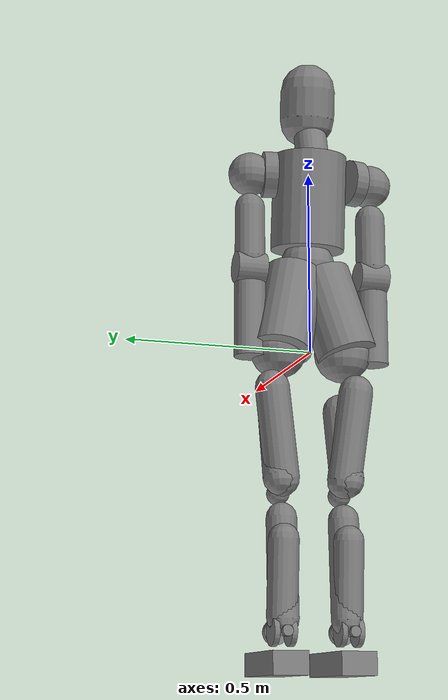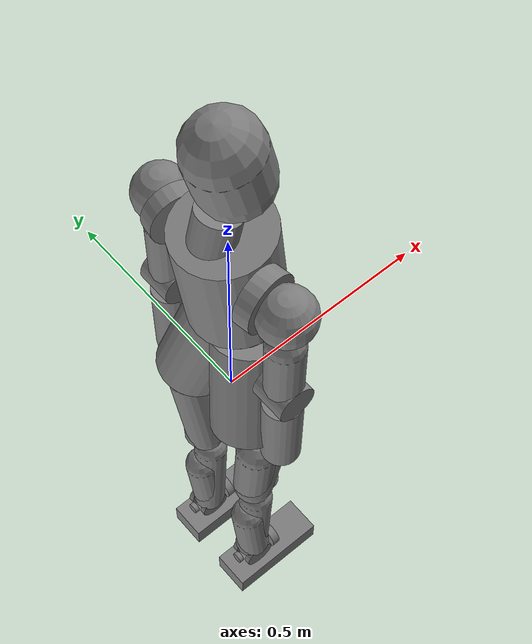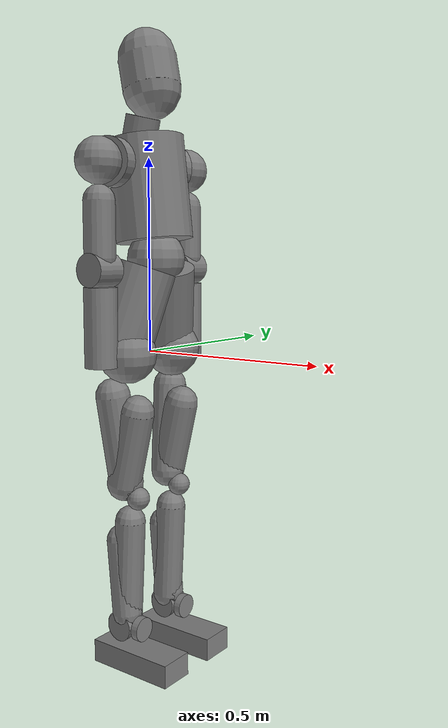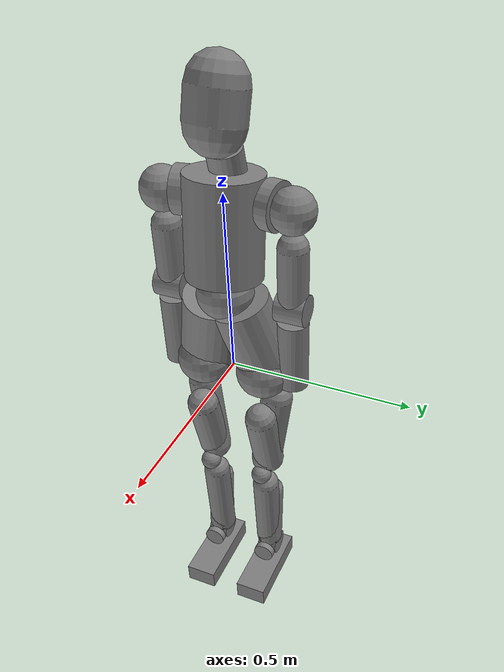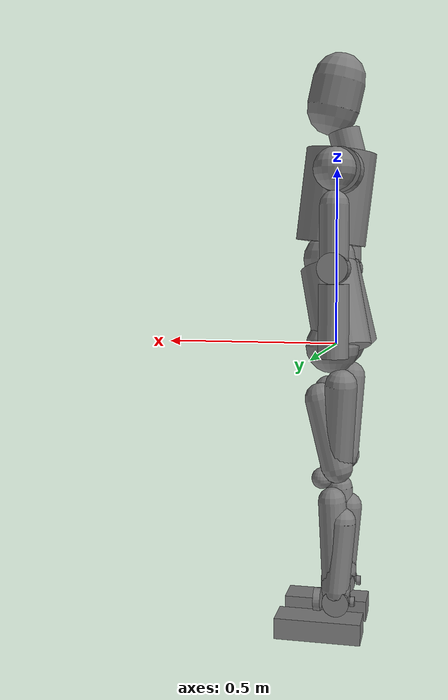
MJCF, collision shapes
<mujoco model="neo_beta">
    <default>
        <geom solref="0.01 0.9" solimp="0.8 0.9 0.01" friction="1.0 0.05 0.001" />
    </default>
    <option integrator="RK4" iterations="50" />
    <compiler angle="radian" />
    <asset>
        <mesh name="PelvisCover" file="./meshes/lod1/PelvisCover.obj" scale="1e-05 1e-05 1e-05" />
        <mesh name="RightHipCover" file="./meshes/lod1/RightHipCover.obj" scale="1e-05 1e-05 1e-05" />
        <mesh name="RightThighCover" file="./meshes/lod1/RightThighCover.obj"
            scale="1e-05 1e-05 1e-05" />
        <mesh name="RightKneecapCover" file="./meshes/lod1/RightKneecapCover.obj"
            scale="1e-05 1e-05 1e-05" />
        <mesh name="RightShinCover" file="./meshes/lod1/RightShinCover.obj"
            scale="1e-05 1e-05 1e-05" />
        <mesh name="RightAnkleCovers" file="./meshes/lod1/RightAnkleCovers.obj"
            scale="1e-05 1e-05 1e-05" />
        <mesh name="RightFootCover" file="./meshes/lod1/RightFootCover.obj"
            scale="1e-05 1e-05 1e-05" />
        <mesh name="LeftHipCover" file="./meshes/lod1/LeftHipCover.obj" scale="1e-05 1e-05 1e-05" />
        <mesh name="LeftThighCover" file="./meshes/lod1/LeftThighCover.obj"
            scale="1e-05 1e-05 1e-05" />
        <mesh name="LeftKneecapCover" file="./meshes/lod1/LeftKneecapCover.obj"
            scale="1e-05 1e-05 1e-05" />
        <mesh name="LeftShinCover" file="./meshes/lod1/LeftShinCover.obj" scale="1e-05 1e-05 1e-05" />
        <mesh name="LeftAnkleCovers" file="./meshes/lod1/LeftAnkleCovers.obj"
            scale="1e-05 1e-05 1e-05" />
        <mesh name="LeftFootCover" file="./meshes/lod1/LeftFootCover.obj" scale="1e-05 1e-05 1e-05" />
        <mesh name="TorsoCover" file="./meshes/lod1/TorsoCover.obj" scale="1e-05 1e-05 1e-05" />
        <mesh name="RightScapulaCover" file="./meshes/lod1/RightScapulaCover.obj"
            scale="1e-05 1e-05 1e-05" />
        <mesh name="RightShoulderCover" file="./meshes/lod1/RightShoulderCover.obj"
            scale="1e-05 1e-05 1e-05" />
        <mesh name="RightUpperArmCover" file="./meshes/lod1/RightUpperArmCover.obj"
            scale="1e-05 1e-05 1e-05" />
        <mesh name="RightElbowCover" file="./meshes/lod1/RightElbowCover.obj"
            scale="1e-05 1e-05 1e-05" />
        <mesh name="RightLowerArmCover" file="./meshes/lod1/RightLowerArmCover.obj"
            scale="1e-05 1e-05 1e-05" />
        <mesh name="LeftScapulaCover" file="./meshes/lod1/LeftScapulaCover.obj"
            scale="1e-05 1e-05 1e-05" />
        <mesh name="LeftShoulderCover" file="./meshes/lod1/LeftShoulderCover.obj"
            scale="1e-05 1e-05 1e-05" />
        <mesh name="LeftUpperArmCover" file="./meshes/lod1/LeftUpperArmCover.obj"
            scale="1e-05 1e-05 1e-05" />
        <mesh name="LeftElbowCover" file="./meshes/lod1/LeftElbowCover.obj"
            scale="1e-05 1e-05 1e-05" />
        <mesh name="LeftLowerArmCover" file="./meshes/lod1/LeftLowerArmCover.obj"
            scale="1e-05 1e-05 1e-05" />
        <mesh name="Neck_Z_Cover" file="./meshes/lod1/Neck_Z_Cover.obj" scale="1e-05 1e-05 1e-05" />
        <mesh name="HeadCover_Combined" file="./meshes/lod1/HeadCover_Combined.obj"
            scale="1e-05 1e-05 1e-05" />
    </asset>

    <worldbody>
        <body name="base">
            <freejoint name="base" />
            <body name="link_pelvis" pos="0 0 0">
                <inertial pos="0.0073145 0.00199007 0.120851"
                    quat="0.63988 0.76686 0.0324651 -0.0377523"
                    mass="6.87077" diaginertia="0.0736053 0.0456795 0.0437648" />
                <geom type="mesh" contype="0" conaffinity="0" group="1" density="0"
                    rgba="0.752941 0.752941 0.752941 1" mesh="PelvisCover" />
                <geom type="cylinder" size="0.08 0.12" pos="-0.00571 0.06421 0.10726" quat="0.98757832 0.11487811 0.10648317 -0.01238645"/>
                <geom type="cylinder" size="0.08 0.12" pos="-0.00571 -0.06421 0.10726" quat="0.98757832 -0.11487811 0.10648317 0.01238645"/>
                <geom type="sphere" size="0.075" pos="0.02196 0 0.24377"/>
                <body name="link_r_upper_hip" pos="0 -0.0895 0">
                    <inertial pos="-0.00766357 0.00071556 -0.00124386"
                        quat="0.508392 0.488927 -0.498376 0.504092" mass="0.361073"
                        diaginertia="0.000647876 0.000620611 0.000402843" />
                    <joint name="j_r_hip_y" pos="0 0 0" axis="0 1 0" range="-1.8326 0.5236"
                        actuatorfrcrange="-211.11 211.11" />
                    <geom type="mesh" contype="0" conaffinity="0" group="1" density="0"
                        rgba="0.752941 0.752941 0.752941 1" mesh="RightHipCover" />
                    <geom type="sphere" size="0.075"/>
                    <body name="link_r_lower_hip">
                        <inertial pos="-0.0164355 -0.00059357 -0.0560469"
                            quat="0.914258 0.0623084 -0.21343 -0.338671" mass="0.765414"
                            diaginertia="0.00181477 0.00180724 0.000343865" />
                        <joint name="j_r_hip_x" pos="0 0 0" axis="1 0 0" range="-0.7418 0.3927"
                            actuatorfrcrange="-211.11 211.11" />
                        <body name="link_r_thigh">
                            <inertial pos="-0.00369548 -0.00643054 -0.200002"
                                quat="0.708472 0.0648774 -0.0359654 0.70183" mass="2.50609"
                                diaginertia="0.0133149 0.0120923 0.0047201" />
                            <joint name="j_r_hip_z" pos="0 0 0" axis="0 0 1" range="-0.7854 0.7854"
                                actuatorfrcrange="-165.72 165.72" />
                            <geom type="mesh" contype="0" conaffinity="0" group="1" density="0"
                                rgba="0.752941 0.752941 0.752941 1" mesh="RightThighCover" />
                            <geom type="capsule" size="0.045 0.12" pos="-0.02079 -0.01106 -0.22497" quat="0.99741153 0.0643721 -0.03197224 0.00206346"/>
                            <geom type="capsule" size="0.045 0.10" pos="0.00787 -0.00173 -0.24515" quat="0.70202909 -0.08458813 0.08458813 -0.70202909"/>
                            <body name="link_r_patella" pos="-0.0145 0 -0.337">
                                <inertial pos="0.00691184 0.00966885 -0.0220421"
                                    quat="0.696181 -0.0721002 -0.109761 0.705752" mass="0.295912"
                                    diaginertia="0.000537903 0.000478921 0.000127717" />
                                <joint name="j_r_upperknee_y" pos="0 0 0" axis="0 1 0"
                                    range="-0.0873 1.7401" actuatorfrcrange="-231.87 231.87" />
                                <geom type="mesh" contype="0" conaffinity="0" group="1" density="0"
                                    rgba="0.752941 0.752941 0.752941 1" mesh="RightKneecapCover" />
                                <geom type="sphere" size="0.03" pos="0.04166 0.00489 -0.04003"/>
                                <body name="link_r_shin" pos="0.015 0 -0.092">
                                    <inertial pos="-0.0133649 0.00032171 -0.125637"
                                        quat="0.699596 0.00697769 0.00695481 0.714471"
                                        mass="2.59562"
                                        diaginertia="0.01992 0.0193467 0.00323459" />
                                    <joint name="j_r_lowerknee_y" pos="0 0 0" axis="0 1 0"
                                        range="-0.0513 1.0236" actuatorfrcrange="-185.49 185.49" />
                                    <geom type="mesh" contype="0" conaffinity="0" group="1"
                                        density="0"
                                        rgba="0.752941 0.752941 0.752941 1" mesh="RightShinCover" />
                                    <geom type="capsule" size="0.04 0.13" pos="-0.00922 0.00486 -0.14341" quat="0.99965732 0 0.02617695 0"/>
                                    <geom type="capsule" size="0.04 0.1" pos="-0.02211 0.00184 -0.16963" quat="0.99904822 0 -0.04361939 0"/>
                                    <body name="link_r_ankle" pos="-0.0155 0 -0.301">
                                        <inertial pos="0.00331621 9.587e-05 -0.00258008"
                                            quat="0.00995169 0.706816 0.00972423 0.707261"
                                            mass="0.196791"
                                            diaginertia="0.000140871 0.000126849 3.01899e-05" />
                                        <joint name="j_r_ankle_y" pos="0 0 0" axis="0 1 0"
                                            range="-0.7854 0.6981" actuatorfrcrange="-276.02 276.02" />
                                        <geom type="mesh" contype="0" conaffinity="0" group="1"
                                            density="0" rgba="0.752941 0.752941 0.752941 1"
                                            mesh="RightAnkleCovers" />
                                        <geom type="cylinder" size="0.038 0.007" pos="-0.00128 -0.02288 0.00013" quat="0.707107 0.707107 0 0"/>
                                        <geom type="cylinder" size="0.038 0.007" pos="-0.00128 0.02288 0.00013" quat="0.707107 0.707107 0 0"/>
                                        <geom type="cylinder" size="0.032 0.01" pos="0.05287 0 -0.00013" quat="0.707107 0 0.707107 0"/>
                                        <geom type="cylinder" size="0.014 0.006" pos="-0.04724 0 -0.00013" quat="0.707107 0 0.707107 0"/>
                                        <body name="link_r_foot">
                                            <inertial pos="0.021541 0.00038918 -0.0772985"
                                                quat="0.457423 0.53338 0.540115 0.463191"
                                                mass="1.43586"
                                                diaginertia="0.00550513 0.00503884 0.0021677" />
                                            <joint name="j_r_ankle_x" pos="0 0 0" axis="1 0 0"
                                                range="-0.5236 0.5236"
                                                actuatorfrcrange="-169.92 169.92" />
                                            <geom type="mesh" contype="0" conaffinity="0" group="1"
                                                density="0" pos="-0.0095 0 0" quat="1 0 0 0"
                                                rgba="0.752941 0.752941 0.752941 1"
                                                mesh="RightFootCover" />
                                            <geom type="box" size="0.123 0.047 0.030" pos="0.04850 0 -0.07923" />
                                            <site name="right_foot_geom_site" type="box"
                                                pos="0.05 0.0 -0.11" size="0.125 0.05 0.005"
                                                rgba="1 0 0 0" />
                                        </body>
                                    </body>
                                </body>
                            </body>
                        </body>
                    </body>
                </body>
                <body name="link_l_upper_hip" pos="0 0.0895 0">
                    <inertial pos="-0.00766357 0.00071556 -0.00124386"
                        quat="0.508392 0.488927 -0.498376 0.504092" mass="0.361073"
                        diaginertia="0.000647876 0.000620611 0.000402843" />
                    <joint name="j_l_hip_y" pos="0 0 0" axis="0 1 0" range="-1.8326 0.5236"
                        actuatorfrcrange="-211.11 211.11" />
                    <geom type="mesh" contype="0" conaffinity="0" group="1" density="0"
                        rgba="0.752941 0.752941 0.752941 1" mesh="LeftHipCover" />
                    <geom type="sphere" size="0.075"/>
                    <body name="link_l_lower_hip">
                        <inertial pos="-0.01651 0.00053942 -0.0559597"
                            quat="0.923084 -0.0572306 -0.215327 0.313487" mass="0.769808"
                            diaginertia="0.00183017 0.00182234 0.000345358" />
                        <joint name="j_l_hip_x" pos="0 0 0" axis="1 0 0" range="-0.3927 0.7418"
                            actuatorfrcrange="-211.11 211.11" />
                        <body name="link_l_thigh">
                            <inertial pos="-0.00317825 0.00642675 -0.199717"
                                quat="0.70707 -0.038761 0.0625968 0.7033" mass="2.50078"
                                diaginertia="0.0133375 0.0121132 0.00471309" />
                            <joint name="j_l_hip_z" pos="0 0 0" axis="0 0 1" range="-0.7854 0.7854"
                                actuatorfrcrange="-165.72 165.72" />
                            <geom type="mesh" contype="0" conaffinity="0" group="1" density="0"
                                rgba="0.752941 0.752941 0.752941 1" mesh="LeftThighCover" />
                            <geom type="capsule" size="0.045 0.12" pos="-0.02079 0.01106 -0.22497" quat="0.99741153 -0.0643721 -0.03197224 -0.00206346"/>
                            <geom type="capsule" size="0.045 0.10" pos="0.00787 0.00173 -0.24515" quat="0.70202909 0.08458813 0.08458813 0.70202909"/>
                            <body name="link_l_patella" pos="-0.0145 0 -0.337">
                                <inertial pos="0.00867652 -0.00967156 -0.0262857"
                                    quat="0.707507 -0.0860211 -0.0722719 0.697719" mass="0.280178"
                                    diaginertia="0.000508464 0.000459291 0.000123725" />
                                <joint name="j_l_upperknee_y" pos="0 0 0" axis="0 1 0"
                                    range="-0.0873 1.7401" actuatorfrcrange="-231.87 231.87" />
                                <geom type="mesh" contype="0" conaffinity="0" group="1" density="0"
                                    rgba="0.752941 0.752941 0.752941 1" mesh="LeftKneecapCover" />
                                <geom type="sphere" size="0.03" pos="0.04166 -0.00489 -0.04003"/>
                                <body name="link_l_shin" pos="0.015 0 -0.092">
                                    <inertial pos="-0.013228 -0.00023049 -0.124134"
                                        quat="0.708958 0.00926938 0.00714237 0.705154"
                                        mass="2.55274"
                                        diaginertia="0.0191882 0.0186053 0.00323647" />
                                    <joint name="j_l_lowerknee_y" pos="0 0 0" axis="0 1 0"
                                        range="-0.0513 1.0236" actuatorfrcrange="-185.49 185.49" />
                                    <geom type="mesh" contype="0" conaffinity="0" group="1"
                                        density="0"
                                        rgba="0.752941 0.752941 0.752941 1" mesh="LeftShinCover" />
                                    <geom type="capsule" size="0.04 0.13" pos="-0.00922 -0.00486 -0.14341" quat="0.99965732 0 0.02617695 0"/>
                                    <geom type="capsule" size="0.04 0.1" pos="-0.02211 -0.00184 -0.16963" quat="0.99904822 0 -0.04361939 0"/>
                                    <body name="link_l_ankle" pos="-0.0155 0 -0.301">
                                        <inertial pos="0.00331621 -9.587e-05 -0.00258008"
                                            quat="-0.00995169 0.706816 -0.00972423 0.707261"
                                            mass="0.196791"
                                            diaginertia="0.000140871 0.000126849 3.01899e-05" />
                                        <joint name="j_l_ankle_y" pos="0 0 0" axis="0 1 0"
                                            range="-0.7854 0.6981" actuatorfrcrange="-276.02 276.02" />
                                        <geom type="mesh" contype="0" conaffinity="0" group="1"
                                            density="0" rgba="0.752941 0.752941 0.752941 1"
                                            mesh="LeftAnkleCovers" />
                                        <geom type="cylinder" size="0.038 0.007" pos="-0.00128 -0.02288 0.00013" quat="0.707107 0.707107 0 0"/>
                                        <geom type="cylinder" size="0.038 0.007" pos="-0.00128 0.02288 0.00013" quat="0.707107 0.707107 0 0"/>
                                        <geom type="cylinder" size="0.032 0.01" pos="0.05287 0 -0.00013" quat="0.707107 0 0.707107 0"/>
                                        <geom type="cylinder" size="0.014 0.006" pos="-0.04724 0 -0.00013" quat="0.707107 0 0.707107 0"/>
                                        <body name="link_l_foot">
                                            <inertial pos="0.0222222 -0.00034418 -0.0779496"
                                                quat="0.470407 0.533977 0.528741 0.462621"
                                                mass="1.42112"
                                                diaginertia="0.00536117 0.00495355 0.00210631" />
                                            <joint name="j_l_ankle_x" pos="0 0 0" axis="1 0 0"
                                                range="-0.5236 0.5236"
                                                actuatorfrcrange="-169.92 169.92" />
                                            <geom type="mesh" contype="0" conaffinity="0" group="1"
                                                density="0" rgba="0.752941 0.752941 0.752941 1"
                                                mesh="LeftFootCover" />
                                            <geom type="box" size="0.123 0.047 0.030" pos="0.04850 0 -0.07923" />
                                            <site name="left_foot_geom_site" type="box"
                                                pos="0.05 0.0 -0.11" size="0.125 0.05 0.005"
                                                rgba="1 0 0 0" />
                                        </body>
                                    </body>
                                </body>
                            </body>
                        </body>
                    </body>
                </body>
                <body name="link_abdomen" pos="0.02216 0 0.243">
                    <inertial pos="0.00070986 -0.0003245 0.0135796"
                        quat="0.999708 -0.0160415 -0.0179914 -0.00169752" mass="0.262993"
                        diaginertia="0.000186555 0.000130355 0.00010592" />
                    <joint name="j_spine_y" pos="0 0 0" axis="0 1 0" range="-0.0873 0.6981"
                        actuatorfrcrange="-282.59 282.59" />
                    <body name="link_torso">
                        <inertial pos="-0.0281692 -0.00096531 0.140662"
                            quat="0.981972 0.0231882 -0.172496 -0.0737526" mass="6.26354"
                            diaginertia="0.0434474 0.0375336 0.0340869" />
                        <joint name="j_spine_z" pos="0 0 0" axis="0 0 1" range="-1.0472 1.0472"
                            actuatorfrcrange="-227.9 227.9" />
                        <geom type="mesh" contype="0" conaffinity="0" group="1" density="0"
                            rgba="0.752941 0.752941 0.752941 1" mesh="TorsoCover" />
                        <geom type="cylinder" size="0.1 0.13" pos="-0.01867 0 0.17607" quat="0.99831858 0 -0.05796565 0" />
                        <geom type="cylinder" size="0.045 0.04" pos="-0.04919 0 0.32270" quat="0.99185336 0 0.12738487 0" />
                        <geom type="cylinder" size="0.062 0.018" pos="-0.04392 -0.11955 0.23902" quat="0.70474027 0.70474027 0.05780275 0.05780275" />
                        <geom type="cylinder" size="0.062 0.018" pos="-0.04392 0.11955 0.23902" quat="0.70474027 -0.70474027 0.05780275 -0.05780275" />
                        <body name="link_r_scapula" pos="-0.03511 -0.1717 0.2377"
                            quat="0.996195 0 0 0.0871543">
                            <inertial pos="-0.0002307 0.0745582 0.00134092"
                                quat="0.704281 0.70906 0.0219027 -0.0272377" mass="1.65249"
                                diaginertia="0.0051238 0.00507641 0.00239145" />
                            <joint name="j_r_shoulder_y" pos="0 0 0" axis="0 1 0"
                                range="-2.3562 1.0472"
                                actuatorfrcrange="-103.77 103.77" />
                            <geom type="mesh" contype="0" conaffinity="0" group="1" density="0"
                                rgba="0.752941 0.752941 0.752941 1" mesh="RightScapulaCover" />
                            <geom type="sphere" size="0.058"/>
                            <body name="link_r_shoulder">
                                <inertial pos="1.271e-05 -0.00169746 -0.021314"
                                    quat="0.706216 0.00253531 -0.00773158 0.707949" mass="0.226886"
                                    diaginertia="0.00026914 0.000208724 0.000126566" />
                                <joint name="j_r_shoulder_x" pos="0 0 0" axis="1 0 0"
                                    range="-2.0944 0.0873" actuatorfrcrange="-133.43 133.43" />
                                <geom type="mesh" contype="0" conaffinity="0" group="1" density="0"
                                    rgba="0.752941 0.752941 0.752941 1" mesh="RightShoulderCover" />
                                <geom type="sphere" size="0.058"/>
                                <body name="link_r_upper_arm" quat="0.996195 0 0 -0.0871543">
                                    <inertial pos="-0.00399127 -3.687e-05 -0.158461"
                                        quat="0.708463 0.0104449 0.0113308 0.70558" mass="1.12649"
                                        diaginertia="0.00515168 0.00499262 0.000754445" />
                                    <joint name="j_r_shoulder_z" pos="0 0 0" axis="0 0 1"
                                        range="-0.5236 1.6581" actuatorfrcrange="-104.24 104.24" />
                                    <geom type="mesh" contype="0" conaffinity="0" group="1"
                                        density="0"
                                        rgba="0.752941 0.752941 0.752941 1"
                                        mesh="RightUpperArmCover" />
                                    <geom type="capsule" size="0.04 0.07" pos="0.000 0.000 -0.16574" />
                                    <body name="link_r_elbow" pos="0 0 -0.263">
                                        <inertial pos="-0.00050533 1.761e-05 -0.013781"
                                            quat="0.999969 -0.0007112 -0.00786327 -2.55364e-05"
                                            mass="0.157484"
                                            diaginertia="0.000130541 0.00011477 8.66591e-05" />
                                        <joint name="j_r_elbow_y" pos="0 0 0" axis="0 1 0"
                                            range="-2.0944 0" actuatorfrcrange="-95.41 95.41" />
                                        <geom type="mesh" contype="0" conaffinity="0" group="1"
                                            density="0" rgba="0.752941 0.752941 0.752941 1"
                                            mesh="RightElbowCover" />
                                        <geom type="cylinder" size="0.042 0.04" pos="0.000 0.000 -0.00151" quat="0.707107 -0.707107 0 0"/>
                                        <body name="link_r_lower_arm">
                                            <inertial pos="0.00020952 6.849e-05 -0.147053"
                                                quat="0.999674 0.000917821 -0.00232824 0.02539"
                                                mass="1.191"
                                                diaginertia="0.00525646 0.00519075 0.000632024" />
                                            <joint name="j_r_elbow_z" pos="0 0 0" axis="0 0 1"
                                                range="-1.5708 0.7854"
                                                actuatorfrcrange="-60.12 60.12" />
                                            <geom type="mesh" contype="0" conaffinity="0" group="1"
                                                density="0" rgba="0.752941 0.752941 0.752941 1"
                                                mesh="RightLowerArmCover" />
                                            <geom type="cylinder" size="0.042 0.1" pos="0.000 0.000 -0.14346" />
                                            <body name="link_r_wrist" pos="0 0 -0.268">
                                                <inertial pos="0.00033557 0.00378767 0.00628441"
                                                    quat="0.716106 -0.0453887 -0.044902 0.695065"
                                                    mass="0.0271772"
                                                    diaginertia="4.34089e-06 3.33681e-06 2.86229e-06" />
                                                <joint name="j_r_wrist_x" pos="0 0 0" axis="1 0 0"
                                                    range="-0.5236 1.5708"
                                                    actuatorfrcrange="-29.35 29.35" />
                                                <body name="link_r_hand" pos="0 0 0" quat="1 0 0 0">
                                                    <inertial pos="-0.0018672 -0.0074707 -0.0883994"
                                                        quat="0.662518 0.0559941 0.0786707 0.742795"
                                                        mass="0.624148"
                                                        diaginertia="0.00198743 0.00146689 0.000624887" />
                                                    <joint name="j_r_wrist_y" pos="0 0 0"
                                                        axis="0 1 0"
                                                        range="-0.2618 0.7854"
                                                        actuatorfrcrange="-27.51 27.51" />
                                                    <body name="right_eef" pos="0 0 0">
                                                            <camera mode="fixed" name="eye_in_right_hand" pos="-0.05 -0.15 0.0" quat="0.000000 -0.000000 -0.258819 0.965926" fovy="75" />
                                                        </body>
                                                </body>
                                            </body>
                                        </body>
                                    </body>
                                </body>
                            </body>
                        </body>
                        <body name="link_l_scapula" pos="-0.03511 0.1717 0.2377"
                            quat="0.996195 0 0 -0.0871543">
                            <inertial pos="0.00017228 -0.0743468 0.00130844"
                                quat="0.707248 0.703402 -0.0531302 0.0469346" mass="1.65555"
                                diaginertia="0.00514273 0.00509914 0.00239101" />
                            <joint name="j_l_shoulder_y" pos="0 0 0" axis="0 1 0"
                                range="-2.3562 1.0472"
                                actuatorfrcrange="-103.77 103.77" />
                            <geom type="mesh" contype="0" conaffinity="0" group="1" density="0"
                                rgba="0.752941 0.752941 0.752941 1" mesh="LeftScapulaCover" />
                            <geom type="sphere" size="0.058"/>
                            <body name="link_l_shoulder">
                                <inertial pos="0.00014092 0.00179768 -0.0213055"
                                    quat="0.706611 -0.0073569 0.00263855 0.707559" mass="0.228031"
                                    diaginertia="0.000269149 0.000209084 0.000126928" />
                                <joint name="j_l_shoulder_x" pos="0 0 0" axis="1 0 0"
                                    range="-0.0873 2.0944" actuatorfrcrange="-133.43 133.43" />
                                <geom type="mesh" contype="0" conaffinity="0" group="1" density="0"
                                    rgba="0.752941 0.752941 0.752941 1" mesh="LeftShoulderCover" />
                                <geom type="sphere" size="0.058"/>
                                <body name="link_l_upper_arm" quat="0.996195 0 0 0.0871543">
                                    <inertial pos="-0.00423068 -4.654e-05 -0.159021"
                                        quat="0.690223 0.0104642 0.0105461 0.723444" mass="1.12429"
                                        diaginertia="0.00523963 0.00507581 0.000754696" />
                                    <joint name="j_l_shoulder_z" pos="0 0 0" axis="0 0 1"
                                        range="-1.6581 0.5236" actuatorfrcrange="-104.24 104.24" />
                                    <geom type="mesh" contype="0" conaffinity="0" group="1"
                                        density="0"
                                        rgba="0.752941 0.752941 0.752941 1" mesh="LeftUpperArmCover" />
                                    <geom type="capsule" size="0.04 0.07" pos="0.000 0.000 -0.16574" />
                                    <body name="link_l_elbow" pos="0 0 -0.263">
                                        <inertial pos="-0.00050533 1.761e-05 -0.013781"
                                            quat="0.999969 -0.0007112 -0.00786327 -2.55364e-05"
                                            mass="0.157484"
                                            diaginertia="0.000130541 0.00011477 8.66591e-05" />
                                        <joint name="j_l_elbow_y" pos="0 0 0" axis="0 1 0"
                                            range="-2.0944 0" actuatorfrcrange="-95.41 95.41" />
                                        <geom type="mesh" contype="0" conaffinity="0" group="1"
                                            density="0" rgba="0.752941 0.752941 0.752941 1"
                                            mesh="LeftElbowCover" />
                                        <geom type="cylinder" size="0.042 0.04" pos="0.000 0.000 -0.00151" quat="0.707107 0.707107 0 0"/>
                                        <body name="link_l_lower_arm">
                                            <inertial pos="0.00016106 -0.00097128 -0.148465"
                                                quat="0.99608 -0.00868978 0.00128943 0.0880241"
                                                mass="1.13949"
                                                diaginertia="0.00507933 0.00496945 0.000659898" />
                                            <joint name="j_l_elbow_z" pos="0 0 0" axis="0 0 1"
                                                range="-0.7854 1.5708"
                                                actuatorfrcrange="-60.12 60.12" />
                                            <geom type="mesh" contype="0" conaffinity="0" group="1"
                                                density="0" rgba="0.752941 0.752941 0.752941 1"
                                                mesh="LeftLowerArmCover" />
                                            <geom type="cylinder" size="0.042 0.1" pos="0.000 0.000 -0.14346" />
                                            <body name="link_l_wrist" pos="0 0 -0.268">
                                                <inertial pos="0.00033557 -0.00378767 -0.00628441"
                                                    quat="0.695065 0.044902 0.0453887 0.716106"
                                                    mass="0.0271772"
                                                    diaginertia="4.34089e-06 3.33681e-06 2.86229e-06" />
                                                <joint name="j_l_wrist_x" pos="0 0 0" axis="1 0 0"
                                                    range="-1.5708 0.5236"
                                                    actuatorfrcrange="-29.35 29.35" />
                                                <body name="link_l_hand" pos="0 0 0" quat="1 0 0 0">
                                                    <inertial pos="-0.0018672 0.0074707 -0.0883994"
                                                        quat="0.751548 0.0508485 0.0773003 0.653157"
                                                        mass="0.624148"
                                                        diaginertia="0.00199008 0.00146259 0.000626539" />
                                                    <joint name="j_l_wrist_y" pos="0 0 0"
                                                        axis="0 1 0"
                                                        range="-0.2618 0.7854"
                                                        actuatorfrcrange="-27.51 27.51" />
                                                        <body name="left_eef" pos="0 0 0">
                                                            <camera mode="fixed" name="eye_in_left_hand" pos="-0.05 -0.15 0.0" quat="0.000000 -0.000000 -0.258819 0.965926" fovy="75" />
                                                        </body>
                                                </body>
                                            </body>
                                        </body>
                                    </body>
                                </body>
                            </body>
                        </body>
                        <body name="link_neck_z" pos="-0.06729 0 0.25503"
                            quat="0.991445 0 0.130526 0">
                            <inertial pos="0.01874 0.00017734 0.0716711"
                                quat="0.720498 0.0939897 0.10889 0.678374" mass="0.378769"
                                diaginertia="0.000510047 0.000474476 0.000178717" />
                            <joint name="j_neck_z" pos="0 0 0" axis="0 0 1" range="-0.5236 0.5236"
                                actuatorfrcrange="-4.66 4.66" />
                            <geom type="mesh" contype="0" conaffinity="0" group="1" density="0"
                                rgba="0.752941 0.752941 0.752941 1" mesh="Neck_Z_Cover" />
                            <geom type="sphere" size="0.045"/>
                            <body name="link_neck_xy" pos="0 0 0.113214"
                                quat="0.991445 0 -0.130526 0">
                                <inertial pos="0.00066161 -0.0021605 0.00714253"
                                    quat="-0.025404 0.672727 0.00915276 0.739398" mass="0.0368024"
                                    diaginertia="1.94889e-05 1.80055e-05 1.07656e-05" />
                                <joint name="j_neck_y" pos="0 0 0" axis="0 1 0"
                                    range="-0.4363 0.6981"
                                    actuatorfrcrange="-11.11 11.11" />
                                <body name="link_head" quat="0.991445 0 0.130526 0">
                                    <inertial pos="-0.00667401 0.00699665 0.107923"
                                        quat="0.659125 -0.269698 -0.248297 0.656632" mass="1.54965"
                                        diaginertia="0.00645602 0.00517767 0.0041212" />
                                    <joint name="j_neck_x" pos="0 0 0" axis="1 0 0"
                                        range="-0.384 0.384"
                                        actuatorfrcrange="-6.94 6.94" />
                                    <geom type="mesh" contype="0" conaffinity="0" group="1"
                                        density="0"
                                        pos="0 0 0" quat="0.999048 0 -0.0436194 0"
                                        rgba="0.752941 0.752941 0.752941 1"
                                        mesh="HeadCover_Combined" />
                                    <geom type="capsule" size="0.075 0.04" pos="-0.00549 0 0.10229" quat="0.96937222 -0.01055248 -0.24169164 -0.04232371" />
                                </body>
                            </body>
                        </body>
                    </body>
                </body>
            </body>
        </body>
    </worldbody>
    <actuator>
        <motor name="j_r_hip_y" joint="j_r_hip_y" ctrlrange="-100 100" />
        <motor name="j_r_hip_x" joint="j_r_hip_x" ctrlrange="-100 100" />
        <motor name="j_r_hip_z" joint="j_r_hip_z" ctrlrange="-100 100" />
        <motor name="j_r_upperknee_y" joint="j_r_upperknee_y" ctrlrange="-100 100" />
        <motor name="j_r_ankle_y" joint="j_r_ankle_y" ctrlrange="-100 100" />
        <motor name="j_r_ankle_x" joint="j_r_ankle_x" ctrlrange="-100 100" />
        <motor name="j_l_hip_y" joint="j_l_hip_y" ctrlrange="-100 100" />
        <motor name="j_l_hip_x" joint="j_l_hip_x" ctrlrange="-100 100" />
        <motor name="j_l_hip_z" joint="j_l_hip_z" ctrlrange="-100 100" />
        <motor name="j_l_upperknee_y" joint="j_l_upperknee_y" ctrlrange="-100 100" />
        <motor name="j_l_ankle_y" joint="j_l_ankle_y" ctrlrange="-100 100" />
        <motor name="j_l_ankle_x" joint="j_l_ankle_x" ctrlrange="-100 100" />
        <motor name="j_spine_y" joint="j_spine_y" ctrlrange="-100 100" />
        <motor name="j_spine_z" joint="j_spine_z" ctrlrange="-100 100" />
        <motor name="j_r_shoulder_y" joint="j_r_shoulder_y" ctrlrange="-100 100" />
        <motor name="j_r_shoulder_x" joint="j_r_shoulder_x" ctrlrange="-100 100" />
        <motor name="j_r_shoulder_z" joint="j_r_shoulder_z" ctrlrange="-100 100" />
        <motor name="j_r_elbow_y" joint="j_r_elbow_y" ctrlrange="-100 100" />
        <motor name="j_r_elbow_z" joint="j_r_elbow_z" ctrlrange="-100 100" />
        <motor name="j_r_wrist_x" joint="j_r_wrist_x" ctrlrange="-100 100" />
        <motor name="j_r_wrist_y" joint="j_r_wrist_y" ctrlrange="-100 100" />
        <motor name="j_l_shoulder_y" joint="j_l_shoulder_y" ctrlrange="-100 100" />
        <motor name="j_l_shoulder_x" joint="j_l_shoulder_x" ctrlrange="-100 100" />
        <motor name="j_l_shoulder_z" joint="j_l_shoulder_z" ctrlrange="-100 100" />
        <motor name="j_l_elbow_y" joint="j_l_elbow_y" ctrlrange="-100 100" />
        <motor name="j_l_elbow_z" joint="j_l_elbow_z" ctrlrange="-100 100" />
        <motor name="j_l_wrist_x" joint="j_l_wrist_x" ctrlrange="-100 100" />
        <motor name="j_l_wrist_y" joint="j_l_wrist_y" ctrlrange="-100 100" />
        <motor name="j_neck_z" joint="j_neck_z" ctrlrange="-100 100" />
        <motor name="j_neck_y" joint="j_neck_y" ctrlrange="-100 100" />
        <motor name="j_neck_x" joint="j_neck_x" ctrlrange="-100 100" />
    </actuator>
    <contact>
        <exclude name="neck1"
            body1="link_neck_z"
            body2="link_neck_xy"
        />
        <exclude name="neck2"
            body1="link_neck_z"
            body2="link_head"
        />
        <exclude name="neck3"
            body1="link_torso"
            body2="link_neck_xy"
        />
        <exclude name="neck4"
            body1="link_torso"
            body2="link_head"
        />
            <exclude name="spine"
            body1="link_torso"
            body2="link_pelvis"
        />
        <exclude name="left_shoulder1"
            body1="link_torso"
            body2="link_l_scapula"
        />
        <exclude name="left_shoulder2"
            body1="link_l_scapula"
            body2="link_l_upper_arm"
        />
        <exclude name="left_shoulder3"
            body1="link_torso"
            body2="link_l_shoulder"
        />
        <exclude name="right_shoulder1"
            body1="link_torso"
            body2="link_r_scapula"
        />
        <exclude name="right_shoulder2"
            body1="link_r_scapula"
            body2="link_r_upper_arm"
        />
        <exclude name="right_shoulder3"
            body1="link_torso"
            body2="link_r_shoulder"
        />
        <exclude name="left_wrist"
            body1="link_l_lower_arm"
            body2="link_l_wrist"
        />
        <exclude name="right_wrist"
            body1="link_r_lower_arm"
            body2="link_r_wrist"
        />
        <exclude name="left_hip2"
            body1="link_l_upper_hip"
            body2="link_l_thigh"
        />
        <exclude name="right_hip2"
            body1="link_r_upper_hip"
            body2="link_r_thigh"
        />
        <exclude name="right_upper_knee"
            body1="link_r_thigh"
            body2="link_r_patella"
        />
        <exclude name="right_lower_knee"
            body1="link_r_patella"
            body2="link_r_shin"
        />
        <exclude name="left_upper_knee"
            body1="link_l_thigh"
            body2="link_l_patella"
        />
        <exclude name="left_lower_knee"
            body1="link_l_patella"
            body2="link_l_shin"
        />
    </contact>
    <equality>
        <joint joint1="j_r_upperknee_y" joint2="j_r_lowerknee_y" polycoef="0 1.7 0 0 0"
            solref="0.004 1"></joint>
        <joint joint1="j_l_upperknee_y" joint2="j_l_lowerknee_y" polycoef="0 1.7 0 0 0"
            solref="0.004 1"></joint>
    </equality>
    <sensor>
        <force name="left_foot_force_sensor" site="left_foot_geom_site" />
        <force name="right_foot_force_sensor" site="right_foot_geom_site" />
        <touch name="left_foot_touch_sensor" site="left_foot_geom_site" />
        <touch name="right_foot_touch_sensor" site="right_foot_geom_site" />
    </sensor>
</mujoco>
